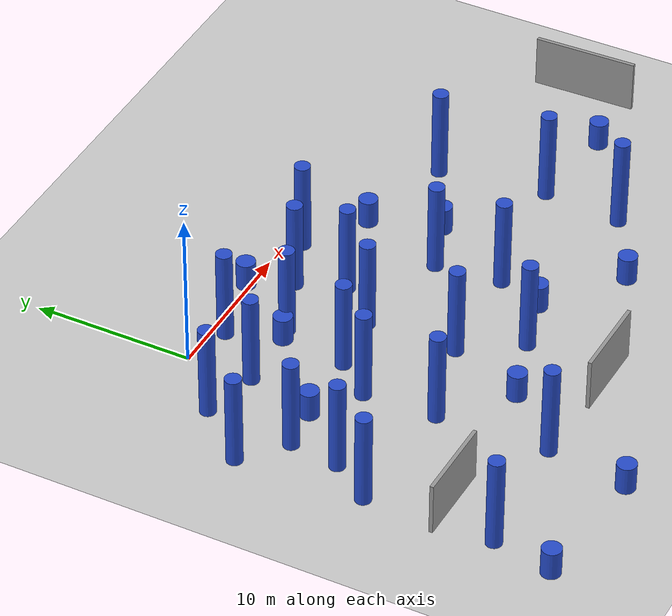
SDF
<sdf version="1.7">
 <world name="default">
  <model name="ground_plane">
   <static>1</static>
   <link name="link">
    <collision name="collision">
     <geometry><plane><normal>0 0 1</normal><size>100 100</size></plane></geometry>
     <surface><friction><ode><mu>100</mu><mu2>50</mu2></ode></friction></surface>
    </collision>
    <visual name="visual">
     <cast_shadows>0</cast_shadows>
     <geometry><plane><normal>0 0 1</normal><size>100 100</size></plane></geometry>
     <material>
      <script><uri>file://media/materials/scripts/gazebo.material</uri><name>Gazebo/Grey</name></script>
     </material>
    </visual>
   </link>
  </model>
  <model name="unit_box_0_0_clone_0_clone_clone_0_clone_clone_clone_clone_clone_clone">
   <static>1</static>
   <pose>-4.07635 -18.9992 1.66667 -2e-06 0.000226 1.55672</pose>
   <link name="link">
    <inertial>
     <mass>1</mass>
     <inertia>
      <ixx>0.166667</ixx>
      <ixy>0</ixy>
      <ixz>0</ixz>
      <iyy>0.166667</iyy>
      <iyz>0</iyz>
      <izz>0.166667</izz>
     </inertia>
    </inertial>
    <collision name="collision">
     <geometry><box><size>0.237691 5.28913 3.33454</size></box></geometry>
     <surface><contact><collide_without_contact>1</collide_without_contact></contact></surface>
    </collision>
    <visual name="visual">
     <geometry><box><size>0.237691 5.28913 3.33454</size></box></geometry>
     <material>
      <script><name>Gazebo/Grey</name><uri>file://media/materials/scripts/gazebo.material</uri></script>
     </material>
    </visual>
    <gravity>0</gravity>
   </link>
  </model>
  <model name="unit_box_0_0_clone_0_clone_clone_0_clone_clone_clone_clone_clone_clone_1">
   <static>1</static>
   <pose>9.37588 -22.2979 1.66667 -2e-06 0.000226 1.55672</pose>
   <link name="link">
    <inertial>
     <mass>1</mass>
     <inertia>
      <ixx>0.166667</ixx>
      <ixy>0</ixy>
      <ixz>0</ixz>
      <iyy>0.166667</iyy>
      <iyz>0</iyz>
      <izz>0.166667</izz>
     </inertia>
    </inertial>
    <collision name="collision">
     <geometry><box><size>0.237691 5.28913 3.33454</size></box></geometry>
     <surface><contact><collide_without_contact>1</collide_without_contact></contact></surface>
    </collision>
    <visual name="visual">
     <geometry><box><size>0.237691 5.28913 3.33454</size></box></geometry>
     <material>
      <script><name>Gazebo/Grey</name><uri>file://media/materials/scripts/gazebo.material</uri></script>
     </material>
    </visual>
    <gravity>0</gravity>
   </link>
  </model>
  <model name="unit_box_0_0_clone_0_clone_clone_0_clone_clone_clone_0">
   <static>1</static>
   <pose>34.0051 -9.5632 1.66667 -0.000226 6e-06 0.022264</pose>
   <link name="link">
    <inertial>
     <mass>1</mass>
     <inertia>
      <ixx>0.166667</ixx>
      <ixy>0</ixy>
      <ixz>0</ixz>
      <iyy>0.166667</iyy>
      <iyz>0</iyz>
      <izz>0.166667</izz>
     </inertia>
    </inertial>
    <collision name="collision">
     <geometry><box><size>0.237691 6.53987 3.33454</size></box></geometry>
     <surface><contact><collide_without_contact>1</collide_without_contact></contact></surface>
    </collision>
    <visual name="visual">
     <geometry><box><size>0.237691 6.53987 3.33454</size></box></geometry>
     <material>
      <script><name>Gazebo/Grey</name><uri>file://media/materials/scripts/gazebo.material</uri></script>
     </material>
    </visual>
    <gravity>0</gravity>
   </link>
  </model>
  <model name="unit_cylinder_0_clone">
   <static>1</static>
   <pose>23.5724 -11.8027 3 0 -0 0.001073</pose>
   <link name="link">
    <inertial>
     <mass>1</mass>
     <inertia><ixx>0.145833</ixx><ixy>0</ixy><ixz>0</ixz><iyy>0.145833</iyy><iyz>0</iyz><izz>0.125</izz></inertia>
    </inertial>
    <collision name="collision">
     <geometry><cylinder><radius>0.5</radius><length>6</length></cylinder></geometry>
     <surface><contact><collide_without_contact>1</collide_without_contact></contact></surface>
    </collision>
    <visual name="visual">
     <geometry><cylinder><radius>0.5</radius><length>6</length></cylinder></geometry>
     <material>
      <script><name>Gazebo/Blue</name><uri>file://media/materials/scripts/gazebo.material</uri></script>
     </material>
    </visual>
    <gravity>0</gravity>
   </link>
  </model>
  <model name="unit_cylinder_0_clone_10">
   <static>1</static>
   <pose>14.6533 -13.0732 3 0 -0 0.001073</pose>
   <link name="link">
    <inertial>
     <mass>1</mass>
     <inertia><ixx>0.145833</ixx><ixy>0</ixy><ixz>0</ixz><iyy>0.145833</iyy><iyz>0</iyz><izz>0.125</izz></inertia>
    </inertial>
    <collision name="collision">
     <geometry><cylinder><radius>0.5</radius><length>6</length></cylinder></geometry>
     <surface><contact><collide_without_contact>1</collide_without_contact></contact></surface>
    </collision>
    <visual name="visual">
     <geometry><cylinder><radius>0.5</radius><length>6</length></cylinder></geometry>
     <material>
      <script><name>Gazebo/Blue</name><uri>file://media/materials/scripts/gazebo.material</uri></script>
     </material>
    </visual>
    <gravity>0</gravity>
   </link>
  </model>
  <model name="unit_cylinder_0_clone_55">
   <static>1</static>
   <pose>-6.46237 -6.58507 3 0 -0 0.001073</pose>
   <link name="link">
    <inertial>
     <mass>1</mass>
     <inertia><ixx>0.145833</ixx><ixy>0</ixy><ixz>0</ixz><iyy>0.145833</iyy><iyz>0</iyz><izz>0.125</izz></inertia>
    </inertial>
    <collision name="collision">
     <geometry><cylinder><radius>0.5</radius><length>6</length></cylinder></geometry>
     <surface><contact><collide_without_contact>1</collide_without_contact></contact></surface>
    </collision>
    <visual name="visual">
     <geometry><cylinder><radius>0.5</radius><length>6</length></cylinder></geometry>
     <material>
      <script><name>Gazebo/Blue</name><uri>file://media/materials/scripts/gazebo.material</uri></script>
     </material>
    </visual>
    <gravity>0</gravity>
   </link>
  </model>
  <model name="unit_cylinder_0_clone_57">
   <static>1</static>
   <pose>7.55385 -7.7575 3 0 -0 0.001073</pose>
   <link name="link">
    <inertial>
     <mass>1</mass>
     <inertia><ixx>0.145833</ixx><ixy>0</ixy><ixz>0</ixz><iyy>0.145833</iyy><iyz>0</iyz><izz>0.125</izz></inertia>
    </inertial>
    <collision name="collision">
     <geometry><cylinder><radius>0.5</radius><length>6</length></cylinder></geometry>
     <surface><contact><collide_without_contact>1</collide_without_contact></contact></surface>
    </collision>
    <visual name="visual">
     <geometry><cylinder><radius>0.5</radius><length>6</length></cylinder></geometry>
     <material>
      <script><name>Gazebo/Blue</name><uri>file://media/materials/scripts/gazebo.material</uri></script>
     </material>
    </visual>
    <gravity>0</gravity>
   </link>
  </model>
  <model name="unit_cylinder_0_clone_59">
   <static>1</static>
   <pose>2 -15 3 0 -0 0.001073</pose>
   <link name="link">
    <inertial>
     <mass>1</mass>
     <inertia><ixx>0.145833</ixx><ixy>0</ixy><ixz>0</ixz><iyy>0.145833</iyy><iyz>0</iyz><izz>0.125</izz></inertia>
    </inertial>
    <collision name="collision">
     <geometry><cylinder><radius>0.5</radius><length>6</length></cylinder></geometry>
     <surface><contact><collide_without_contact>1</collide_without_contact></contact></surface>
    </collision>
    <visual name="visual">
     <geometry><cylinder><radius>0.5</radius><length>6</length></cylinder></geometry>
     <material>
      <script><name>Gazebo/Blue</name><uri>file://media/materials/scripts/gazebo.material</uri></script>
     </material>
    </visual>
    <gravity>0</gravity>
   </link>
  </model>
  <model name="unit_cylinder_1_clone_5">
   <static>1</static>
   <pose>29.6778 -12.511 0.9 0 -0 0.001073</pose>
   <link name="link">
    <inertial>
     <mass>1</mass>
     <inertia><ixx>0.145833</ixx><ixy>0</ixy><ixz>0</ixz><iyy>0.145833</iyy><iyz>0</iyz><izz>0.125</izz></inertia>
    </inertial>
    <collision name="collision">
     <geometry><cylinder><radius>0.6</radius><length>1.8</length></cylinder></geometry>
     <surface><contact><collide_without_contact>1</collide_without_contact></contact></surface>
    </collision>
    <visual name="visual">
     <geometry><cylinder><radius>0.6</radius><length>1.8</length></cylinder></geometry>
     <material>
      <script><name>Gazebo/Blue</name><uri>file://media/materials/scripts/gazebo.material</uri></script>
     </material>
    </visual>
    <gravity>0</gravity>
   </link>
  </model>
  <model name="unit_cylinder_1_clone_7">
   <static>1</static>
   <pose>18.3931 -19.4937 0.9 0 -0 0.001073</pose>
   <link name="link">
    <inertial>
     <mass>1</mass>
     <inertia><ixx>0.145833</ixx><ixy>0</ixy><ixz>0</ixz><iyy>0.145833</iyy><iyz>0</iyz><izz>0.125</izz></inertia>
    </inertial>
    <collision name="collision">
     <geometry><cylinder><radius>0.6</radius><length>1.8</length></cylinder></geometry>
     <surface><contact><collide_without_contact>1</collide_without_contact></contact></surface>
    </collision>
    <visual name="visual">
     <geometry><cylinder><radius>0.6</radius><length>1.8</length></cylinder></geometry>
     <material>
      <script><name>Gazebo/Blue</name><uri>file://media/materials/scripts/gazebo.material</uri></script>
     </material>
    </visual>
    <gravity>0</gravity>
   </link>
  </model>
  <model name="unit_cylinder_1_clone_8">
   <static>1</static>
   <pose>17.6395 -7.71205 0.9 0 -0 0.001073</pose>
   <link name="link">
    <inertial>
     <mass>1</mass>
     <inertia><ixx>0.145833</ixx><ixy>0</ixy><ixz>0</ixz><iyy>0.145833</iyy><iyz>0</iyz><izz>0.125</izz></inertia>
    </inertial>
    <collision name="collision">
     <geometry><cylinder><radius>0.6</radius><length>1.8</length></cylinder></geometry>
     <surface><contact><collide_without_contact>1</collide_without_contact></contact></surface>
    </collision>
    <visual name="visual">
     <geometry><cylinder><radius>0.6</radius><length>1.8</length></cylinder></geometry>
     <material>
      <script><name>Gazebo/Blue</name><uri>file://media/materials/scripts/gazebo.material</uri></script>
     </material>
    </visual>
    <gravity>0</gravity>
   </link>
  </model>
  <model name="unit_cylinder_1_clone_9">
   <static>1</static>
   <pose>7.53493 0.253658 0.9 0 -0 0.001073</pose>
   <link name="link">
    <inertial>
     <mass>1</mass>
     <inertia><ixx>0.145833</ixx><ixy>0</ixy><ixz>0</ixz><iyy>0.145833</iyy><iyz>0</iyz><izz>0.125</izz></inertia>
    </inertial>
    <collision name="collision">
     <geometry><cylinder><radius>0.6</radius><length>1.8</length></cylinder></geometry>
     <surface><contact><collide_without_contact>1</collide_without_contact></contact></surface>
    </collision>
    <visual name="visual">
     <geometry><cylinder><radius>0.6</radius><length>1.8</length></cylinder></geometry>
     <material>
      <script><name>Gazebo/Blue</name><uri>file://media/materials/scripts/gazebo.material</uri></script>
     </material>
    </visual>
    <gravity>0</gravity>
   </link>
  </model>
  <model name="unit_cylinder_1_clone_19">
   <static>1</static>
   <pose>1.55407 -26.9495 0.9 0 -0 0.001073</pose>
   <link name="link">
    <inertial>
     <mass>1</mass>
     <inertia><ixx>0.145833</ixx><ixy>0</ixy><ixz>0</ixz><iyy>0.145833</iyy><iyz>0</iyz><izz>0.125</izz></inertia>
    </inertial>
    <collision name="collision">
     <geometry><cylinder><radius>0.6</radius><length>1.8</length></cylinder></geometry>
     <surface><contact><collide_without_contact>1</collide_without_contact></contact></surface>
    </collision>
    <visual name="visual">
     <geometry><cylinder><radius>0.6</radius><length>1.8</length></cylinder></geometry>
     <material>
      <script><name>Gazebo/Blue</name><uri>file://media/materials/scripts/gazebo.material</uri></script>
     </material>
    </visual>
    <gravity>0</gravity>
   </link>
  </model>
  <model name="unit_cylinder_0_clone_3_clone_1">
   <static>1</static>
   <pose>1.79769 -10.4468 3 0 -0 0.001073</pose>
   <link name="link">
    <inertial>
     <mass>1</mass>
     <inertia><ixx>0.145833</ixx><ixy>0</ixy><ixz>0</ixz><iyy>0.145833</iyy><iyz>0</iyz><izz>0.125</izz></inertia>
    </inertial>
    <collision name="collision">
     <geometry><cylinder><radius>0.5</radius><length>6</length></cylinder></geometry>
     <surface><contact><collide_without_contact>1</collide_without_contact></contact></surface>
    </collision>
    <visual name="visual">
     <geometry><cylinder><radius>0.5</radius><length>6</length></cylinder></geometry>
     <material>
      <script><name>Gazebo/Blue</name><uri>file://media/materials/scripts/gazebo.material</uri></script>
     </material>
    </visual>
    <gravity>0</gravity>
   </link>
  </model>
  <model name="unit_cylinder_0_clone_3_clone_4">
   <static>1</static>
   <pose>-6.04746 -14.462 3 0 -0 0.001073</pose>
   <link name="link">
    <inertial>
     <mass>1</mass>
     <inertia><ixx>0.145833</ixx><ixy>0</ixy><ixz>0</ixz><iyy>0.145833</iyy><iyz>0</iyz><izz>0.125</izz></inertia>
    </inertial>
    <collision name="collision">
     <geometry><cylinder><radius>0.5</radius><length>6</length></cylinder></geometry>
     <surface><contact><collide_without_contact>1</collide_without_contact></contact></surface>
    </collision>
    <visual name="visual">
     <geometry><cylinder><radius>0.5</radius><length>6</length></cylinder></geometry>
     <material>
      <script><name>Gazebo/Blue</name><uri>file://media/materials/scripts/gazebo.material</uri></script>
     </material>
    </visual>
    <gravity>0</gravity>
   </link>
  </model>
  <model name="unit_cylinder_0_clone_3_clone_6">
   <static>1</static>
   <pose>12.3759 -0.977729 3 0 -0 0.001073</pose>
   <link name="link">
    <inertial>
     <mass>1</mass>
     <inertia><ixx>0.145833</ixx><ixy>0</ixy><ixz>0</ixz><iyy>0.145833</iyy><iyz>0</iyz><izz>0.125</izz></inertia>
    </inertial>
    <collision name="collision">
     <geometry><cylinder><radius>0.5</radius><length>6</length></cylinder></geometry>
     <surface><contact><collide_without_contact>1</collide_without_contact></contact></surface>
    </collision>
    <visual name="visual">
     <geometry><cylinder><radius>0.5</radius><length>6</length></cylinder></geometry>
     <material>
      <script><name>Gazebo/Blue</name><uri>file://media/materials/scripts/gazebo.material</uri></script>
     </material>
    </visual>
    <gravity>0</gravity>
   </link>
  </model>
  <model name="unit_cylinder_0_clone_3_clone_9">
   <static>1</static>
   <pose>22.5834 -5.04922 3 0 -0 0.001073</pose>
   <link name="link">
    <inertial>
     <mass>1</mass>
     <inertia><ixx>0.145833</ixx><ixy>0</ixy><ixz>0</ixz><iyy>0.145833</iyy><iyz>0</iyz><izz>0.125</izz></inertia>
    </inertial>
    <collision name="collision">
     <geometry><cylinder><radius>0.5</radius><length>6</length></cylinder></geometry>
     <surface><contact><collide_without_contact>1</collide_without_contact></contact></surface>
    </collision>
    <visual name="visual">
     <geometry><cylinder><radius>0.5</radius><length>6</length></cylinder></geometry>
     <material>
      <script><name>Gazebo/Blue</name><uri>file://media/materials/scripts/gazebo.material</uri></script>
     </material>
    </visual>
    <gravity>0</gravity>
   </link>
  </model>
  <model name="unit_cylinder_0_clone_3_clone_10">
   <static>1</static>
   <pose>-5.87324 -22.4043 3 0 -0 0.001073</pose>
   <link name="link">
    <inertial>
     <mass>1</mass>
     <inertia><ixx>0.145833</ixx><ixy>0</ixy><ixz>0</ixz><iyy>0.145833</iyy><iyz>0</iyz><izz>0.125</izz></inertia>
    </inertial>
    <collision name="collision">
     <geometry><cylinder><radius>0.5</radius><length>6</length></cylinder></geometry>
     <surface><contact><collide_without_contact>1</collide_without_contact></contact></surface>
    </collision>
    <visual name="visual">
     <geometry><cylinder><radius>0.5</radius><length>6</length></cylinder></geometry>
     <material>
      <script><name>Gazebo/Blue</name><uri>file://media/materials/scripts/gazebo.material</uri></script>
     </material>
    </visual>
    <gravity>0</gravity>
   </link>
  </model>
  <model name="unit_cylinder_1_clone_19_clone">
   <static>1</static>
   <pose>4.08634 -4.05232 0.9 0 -0 0.001073</pose>
   <link name="link">
    <inertial>
     <mass>1</mass>
     <inertia><ixx>0.145833</ixx><ixy>0</ixy><ixz>0</ixz><iyy>0.145833</iyy><iyz>0</iyz><izz>0.125</izz></inertia>
    </inertial>
    <collision name="collision">
     <geometry><cylinder><radius>0.6</radius><length>1.8</length></cylinder></geometry>
     <surface><contact><collide_without_contact>1</collide_without_contact></contact></surface>
    </collision>
    <visual name="visual">
     <geometry><cylinder><radius>0.6</radius><length>1.8</length></cylinder></geometry>
     <material>
      <script><name>Gazebo/Blue</name><uri>file://media/materials/scripts/gazebo.material</uri></script>
     </material>
    </visual>
    <gravity>0</gravity>
   </link>
  </model>
  <model name="unit_cylinder_1_clone_19_clone_2">
   <static>1</static>
   <pose>16.2049 -3.41918 0.9 0 -0 0.001073</pose>
   <link name="link">
    <inertial>
     <mass>1</mass>
     <inertia><ixx>0.145833</ixx><ixy>0</ixy><ixz>0</ixz><iyy>0.145833</iyy><iyz>0</iyz><izz>0.125</izz></inertia>
    </inertial>
    <collision name="collision">
     <geometry><cylinder><radius>0.6</radius><length>1.8</length></cylinder></geometry>
     <surface><contact><collide_without_contact>1</collide_without_contact></contact></surface>
    </collision>
    <visual name="visual">
     <geometry><cylinder><radius>0.6</radius><length>1.8</length></cylinder></geometry>
     <material>
      <script><name>Gazebo/Blue</name><uri>file://media/materials/scripts/gazebo.material</uri></script>
     </material>
    </visual>
    <gravity>0</gravity>
   </link>
  </model>
  <model name="unit_cylinder_1_clone_19_clone_3">
   <static>1</static>
   <pose>5.80019 -18.2504 0.9 0 -0 0.001073</pose>
   <link name="link">
    <inertial>
     <mass>1</mass>
     <inertia><ixx>0.145833</ixx><ixy>0</ixy><ixz>0</ixz><iyy>0.145833</iyy><iyz>0</iyz><izz>0.125</izz></inertia>
    </inertial>
    <collision name="collision">
     <geometry><cylinder><radius>0.6</radius><length>1.8</length></cylinder></geometry>
     <surface><contact><collide_without_contact>1</collide_without_contact></contact></surface>
    </collision>
    <visual name="visual">
     <geometry><cylinder><radius>0.6</radius><length>1.8</length></cylinder></geometry>
     <material>
      <script><name>Gazebo/Blue</name><uri>file://media/materials/scripts/gazebo.material</uri></script>
     </material>
    </visual>
    <gravity>0</gravity>
   </link>
  </model>
  <model name="unit_cylinder_1_clone_19_clone_5">
   <static>1</static>
   <pose>-6.57664 -26.1556 0.9 0 -0 0.001073</pose>
   <link name="link">
    <inertial>
     <mass>1</mass>
     <inertia><ixx>0.145833</ixx><ixy>0</ixy><ixz>0</ixz><iyy>0.145833</iyy><iyz>0</iyz><izz>0.125</izz></inertia>
    </inertial>
    <collision name="collision">
     <geometry><cylinder><radius>0.6</radius><length>1.8</length></cylinder></geometry>
     <surface><contact><collide_without_contact>1</collide_without_contact></contact></surface>
    </collision>
    <visual name="visual">
     <geometry><cylinder><radius>0.6</radius><length>1.8</length></cylinder></geometry>
     <material>
      <script><name>Gazebo/Blue</name><uri>file://media/materials/scripts/gazebo.material</uri></script>
     </material>
    </visual>
    <gravity>0</gravity>
   </link>
  </model>
  <model name="unit_cylinder_1_clone_19_clone_12">
   <static>1</static>
   <pose>13.6276 -15.9206 0.9 0 -0 0.001073</pose>
   <link name="link">
    <inertial>
     <mass>1</mass>
     <inertia><ixx>0.145833</ixx><ixy>0</ixy><ixz>0</ixz><iyy>0.145833</iyy><iyz>0</iyz><izz>0.125</izz></inertia>
    </inertial>
    <collision name="collision">
     <geometry><cylinder><radius>0.6</radius><length>1.8</length></cylinder></geometry>
     <surface><contact><collide_without_contact>1</collide_without_contact></contact></surface>
    </collision>
    <visual name="visual">
     <geometry><cylinder><radius>0.6</radius><length>1.8</length></cylinder></geometry>
     <material>
      <script><name>Gazebo/Blue</name><uri>file://media/materials/scripts/gazebo.material</uri></script>
     </material>
    </visual>
    <gravity>0</gravity>
   </link>
  </model>
  <model name="unit_cylinder_1_clone_19_clone_13">
   <static>1</static>
   <pose>-1.07028 -8.48174 0.9 0 -0 0.001073</pose>
   <link name="link">
    <inertial>
     <mass>1</mass>
     <inertia><ixx>0.145833</ixx><ixy>0</ixy><ixz>0</ixz><iyy>0.145833</iyy><iyz>0</iyz><izz>0.125</izz></inertia>
    </inertial>
    <collision name="collision">
     <geometry><cylinder><radius>0.6</radius><length>1.8</length></cylinder></geometry>
     <surface><contact><collide_without_contact>1</collide_without_contact></contact></surface>
    </collision>
    <visual name="visual">
     <geometry><cylinder><radius>0.6</radius><length>1.8</length></cylinder></geometry>
     <material>
      <script><name>Gazebo/Blue</name><uri>file://media/materials/scripts/gazebo.material</uri></script>
     </material>
    </visual>
    <gravity>0</gravity>
   </link>
  </model>
  <model name="unit_cylinder_0_clone_3_clone_clone">
   <static>1</static>
   <pose>3.66917 -8.20938 3 0 -0 0.001073</pose>
   <link name="link">
    <inertial>
     <mass>1</mass>
     <inertia><ixx>0.145833</ixx><ixy>0</ixy><ixz>0</ixz><iyy>0.145833</iyy><iyz>0</iyz><izz>0.125</izz></inertia>
    </inertial>
    <collision name="collision">
     <geometry><cylinder><radius>0.5</radius><length>6</length></cylinder></geometry>
     <surface><contact><collide_without_contact>1</collide_without_contact></contact></surface>
    </collision>
    <visual name="visual">
     <geometry><cylinder><radius>0.5</radius><length>6</length></cylinder></geometry>
     <material>
      <script><name>Gazebo/Blue</name><uri>file://media/materials/scripts/gazebo.material</uri></script>
     </material>
    </visual>
    <gravity>0</gravity>
   </link>
  </model>
  <model name="unit_cylinder_0_clone_3_clone_clone_5">
   <static>1</static>
   <pose>0.048161 -4.13589 3 0 -0 0.001073</pose>
   <link name="link">
    <inertial>
     <mass>1</mass>
     <inertia><ixx>0.145833</ixx><ixy>0</ixy><ixz>0</ixz><iyy>0.145833</iyy><iyz>0</iyz><izz>0.125</izz></inertia>
    </inertial>
    <collision name="collision">
     <geometry><cylinder><radius>0.5</radius><length>6</length></cylinder></geometry>
     <surface><contact><collide_without_contact>1</collide_without_contact></contact></surface>
    </collision>
    <visual name="visual">
     <geometry><cylinder><radius>0.5</radius><length>6</length></cylinder></geometry>
     <material>
      <script><name>Gazebo/Blue</name><uri>file://media/materials/scripts/gazebo.material</uri></script>
     </material>
    </visual>
    <gravity>0</gravity>
   </link>
  </model>
  <model name="unit_cylinder_0_clone_3_clone_clone_11">
   <static>1</static>
   <pose>-4.254 -11.918 3 0 -0 0.001073</pose>
   <link name="link">
    <inertial>
     <mass>1</mass>
     <inertia><ixx>0.145833</ixx><ixy>0</ixy><ixz>0</ixz><iyy>0.145833</iyy><iyz>0</iyz><izz>0.125</izz></inertia>
    </inertial>
    <collision name="collision">
     <geometry><cylinder><radius>0.5</radius><length>6</length></cylinder></geometry>
     <surface><contact><collide_without_contact>1</collide_without_contact></contact></surface>
    </collision>
    <visual name="visual">
     <geometry><cylinder><radius>0.5</radius><length>6</length></cylinder></geometry>
     <material>
      <script><name>Gazebo/Blue</name><uri>file://media/materials/scripts/gazebo.material</uri></script>
     </material>
    </visual>
    <gravity>0</gravity>
   </link>
  </model>
  <model name="unit_cylinder_0_clone_3_clone_clone_13">
   <static>1</static>
   <pose>9.93828 -5.22638 3 0 -0 0.001073</pose>
   <link name="link">
    <inertial>
     <mass>1</mass>
     <inertia><ixx>0.145833</ixx><ixy>0</ixy><ixz>0</ixz><iyy>0.145833</iyy><iyz>0</iyz><izz>0.125</izz></inertia>
    </inertial>
    <collision name="collision">
     <geometry><cylinder><radius>0.5</radius><length>6</length></cylinder></geometry>
     <surface><contact><collide_without_contact>1</collide_without_contact></contact></surface>
    </collision>
    <visual name="visual">
     <geometry><cylinder><radius>0.5</radius><length>6</length></cylinder></geometry>
     <material>
      <script><name>Gazebo/Blue</name><uri>file://media/materials/scripts/gazebo.material</uri></script>
     </material>
    </visual>
    <gravity>0</gravity>
   </link>
  </model>
  <model name="unit_cylinder_0_clone_3_clone_clone_19">
   <static>1</static>
   <pose>10.1252 -16.8794 3 0 -0 0.001073</pose>
   <link name="link">
    <inertial>
     <mass>1</mass>
     <inertia><ixx>0.145833</ixx><ixy>0</ixy><ixz>0</ixz><iyy>0.145833</iyy><iyz>0</iyz><izz>0.125</izz></inertia>
    </inertial>
    <collision name="collision">
     <geometry><cylinder><radius>0.5</radius><length>6</length></cylinder></geometry>
     <surface><contact><collide_without_contact>1</collide_without_contact></contact></surface>
    </collision>
    <visual name="visual">
     <geometry><cylinder><radius>0.5</radius><length>6</length></cylinder></geometry>
     <material>
      <script><name>Gazebo/Blue</name><uri>file://media/materials/scripts/gazebo.material</uri></script>
     </material>
    </visual>
    <gravity>0</gravity>
   </link>
  </model>
  <model name="unit_cylinder_0_clone_3_clone_clone_30">
   <static>1</static>
   <pose>23.1419 -16.8054 3 0 -0 0.001073</pose>
   <link name="link">
    <inertial>
     <mass>1</mass>
     <inertia><ixx>0.145833</ixx><ixy>0</ixy><ixz>0</ixz><iyy>0.145833</iyy><iyz>0</iyz><izz>0.125</izz></inertia>
    </inertial>
    <collision name="collision">
     <geometry><cylinder><radius>0.5</radius><length>6</length></cylinder></geometry>
     <surface><contact><collide_without_contact>1</collide_without_contact></contact></surface>
    </collision>
    <visual name="visual">
     <geometry><cylinder><radius>0.5</radius><length>6</length></cylinder></geometry>
     <material>
      <script><name>Gazebo/Blue</name><uri>file://media/materials/scripts/gazebo.material</uri></script>
     </material>
    </visual>
    <gravity>0</gravity>
   </link>
  </model>
  <model name="unit_cylinder_0_clone_3_clone_clone_38">
   <static>1</static>
   <pose>2.32054 -21.8892 3 0 -0 0.001073</pose>
   <link name="link">
    <inertial>
     <mass>1</mass>
     <inertia><ixx>0.145833</ixx><ixy>0</ixy><ixz>0</ixz><iyy>0.145833</iyy><iyz>0</iyz><izz>0.125</izz></inertia>
    </inertial>
    <collision name="collision">
     <geometry><cylinder><radius>0.5</radius><length>6</length></cylinder></geometry>
     <surface><contact><collide_without_contact>1</collide_without_contact></contact></surface>
    </collision>
    <visual name="visual">
     <geometry><cylinder><radius>0.5</radius><length>6</length></cylinder></geometry>
     <material>
      <script><name>Gazebo/Blue</name><uri>file://media/materials/scripts/gazebo.material</uri></script>
     </material>
    </visual>
    <gravity>0</gravity>
   </link>
  </model>
  <model name="unit_cylinder_0_clone_3_clone_clone_39">
   <static>1</static>
   <pose>-3.48218 -3.24184 3 0 -0 0.001073</pose>
   <link name="link">
    <inertial>
     <mass>1</mass>
     <inertia><ixx>0.145833</ixx><ixy>0</ixy><ixz>0</ixz><iyy>0.145833</iyy><iyz>0</iyz><izz>0.125</izz></inertia>
    </inertial>
    <collision name="collision">
     <geometry><cylinder><radius>0.5</radius><length>6</length></cylinder></geometry>
     <surface><contact><collide_without_contact>1</collide_without_contact></contact></surface>
    </collision>
    <visual name="visual">
     <geometry><cylinder><radius>0.5</radius><length>6</length></cylinder></geometry>
     <material>
      <script><name>Gazebo/Blue</name><uri>file://media/materials/scripts/gazebo.material</uri></script>
     </material>
    </visual>
    <gravity>0</gravity>
   </link>
  </model>
  <model name="unit_cylinder_0_clone_3_clone_clone_41">
   <static>1</static>
   <pose>4.8917 -3.88838 3 0 -0 0.001073</pose>
   <link name="link">
    <inertial>
     <mass>1</mass>
     <inertia><ixx>0.145833</ixx><ixy>0</ixy><ixz>0</ixz><iyy>0.145833</iyy><iyz>0</iyz><izz>0.125</izz></inertia>
    </inertial>
    <collision name="collision">
     <geometry><cylinder><radius>0.5</radius><length>6</length></cylinder></geometry>
     <surface><contact><collide_without_contact>1</collide_without_contact></contact></surface>
    </collision>
    <visual name="visual">
     <geometry><cylinder><radius>0.5</radius><length>6</length></cylinder></geometry>
     <material>
      <script><name>Gazebo/Blue</name><uri>file://media/materials/scripts/gazebo.material</uri></script>
     </material>
    </visual>
    <gravity>0</gravity>
   </link>
  </model>
  <model name="unit_cylinder_0_clone_3_clone_clone_45">
   <static>1</static>
   <pose>-3.85549 -8.79621 3 0 -0 0.001073</pose>
   <link name="link">
    <inertial>
     <mass>1</mass>
     <inertia><ixx>0.145833</ixx><ixy>0</ixy><ixz>0</ixz><iyy>0.145833</iyy><iyz>0</iyz><izz>0.125</izz></inertia>
    </inertial>
    <collision name="collision">
     <geometry><cylinder><radius>0.5</radius><length>6</length></cylinder></geometry>
     <surface><contact><collide_without_contact>1</collide_without_contact></contact></surface>
    </collision>
    <visual name="visual">
     <geometry><cylinder><radius>0.5</radius><length>6</length></cylinder></geometry>
     <material>
      <script><name>Gazebo/Blue</name><uri>file://media/materials/scripts/gazebo.material</uri></script>
     </material>
    </visual>
    <gravity>0</gravity>
   </link>
  </model>
  <model name="unit_cylinder_0_clone_3_clone_clone_46">
   <static>1</static>
   <pose>2.95961 -0.851943 3 0 -0 0.001073</pose>
   <link name="link">
    <inertial>
     <mass>1</mass>
     <inertia><ixx>0.145833</ixx><ixy>0</ixy><ixz>0</ixz><iyy>0.145833</iyy><iyz>0</iyz><izz>0.125</izz></inertia>
    </inertial>
    <collision name="collision">
     <geometry><cylinder><radius>0.5</radius><length>6</length></cylinder></geometry>
     <surface><contact><collide_without_contact>1</collide_without_contact></contact></surface>
    </collision>
    <visual name="visual">
     <geometry><cylinder><radius>0.5</radius><length>6</length></cylinder></geometry>
     <material>
      <script><name>Gazebo/Blue</name><uri>file://media/materials/scripts/gazebo.material</uri></script>
     </material>
    </visual>
    <gravity>0</gravity>
   </link>
  </model>
  <model name="unit_cylinder_0_clone_3_clone_clone_47">
   <static>1</static>
   <pose>8.83991 -2.3232 3 0 -0 0.001073</pose>
   <link name="link">
    <inertial>
     <mass>1</mass>
     <inertia><ixx>0.145833</ixx><ixy>0</ixy><ixz>0</ixz><iyy>0.145833</iyy><iyz>0</iyz><izz>0.125</izz></inertia>
    </inertial>
    <collision name="collision">
     <geometry><cylinder><radius>0.5</radius><length>6</length></cylinder></geometry>
     <surface><contact><collide_without_contact>1</collide_without_contact></contact></surface>
    </collision>
    <visual name="visual">
     <geometry><cylinder><radius>0.5</radius><length>6</length></cylinder></geometry>
     <material>
      <script><name>Gazebo/Blue</name><uri>file://media/materials/scripts/gazebo.material</uri></script>
     </material>
    </visual>
    <gravity>0</gravity>
   </link>
  </model>
  <model name="unit_cylinder_0_clone_3_clone_clone_48">
   <static>1</static>
   <pose>14.2194 -8.90434 3 0 -0 0.001073</pose>
   <link name="link">
    <inertial>
     <mass>1</mass>
     <inertia><ixx>0.145833</ixx><ixy>0</ixy><ixz>0</ixz><iyy>0.145833</iyy><iyz>0</iyz><izz>0.125</izz></inertia>
    </inertial>
    <collision name="collision">
     <geometry><cylinder><radius>0.5</radius><length>6</length></cylinder></geometry>
     <surface><contact><collide_without_contact>1</collide_without_contact></contact></surface>
    </collision>
    <visual name="visual">
     <geometry><cylinder><radius>0.5</radius><length>6</length></cylinder></geometry>
     <material>
      <script><name>Gazebo/Blue</name><uri>file://media/materials/scripts/gazebo.material</uri></script>
     </material>
    </visual>
    <gravity>0</gravity>
   </link>
  </model>
  <model name="unit_cylinder_0_clone_3_clone_clone_49">
   <static>1</static>
   <pose>7.73229 -13.4144 3 0 -0 0.001073</pose>
   <link name="link">
    <inertial>
     <mass>1</mass>
     <inertia><ixx>0.145833</ixx><ixy>0</ixy><ixz>0</ixz><iyy>0.145833</iyy><iyz>0</iyz><izz>0.125</izz></inertia>
    </inertial>
    <collision name="collision">
     <geometry><cylinder><radius>0.5</radius><length>6</length></cylinder></geometry>
     <surface><contact><collide_without_contact>1</collide_without_contact></contact></surface>
    </collision>
    <visual name="visual">
     <geometry><cylinder><radius>0.5</radius><length>6</length></cylinder></geometry>
     <material>
      <script><name>Gazebo/Blue</name><uri>file://media/materials/scripts/gazebo.material</uri></script>
     </material>
    </visual>
    <gravity>0</gravity>
   </link>
  </model>
 </world>
</sdf>
